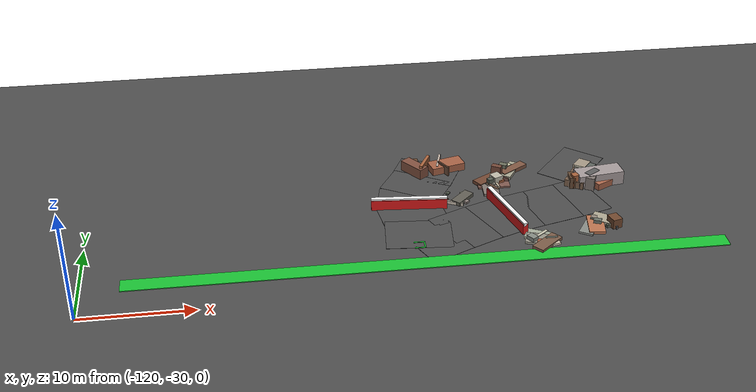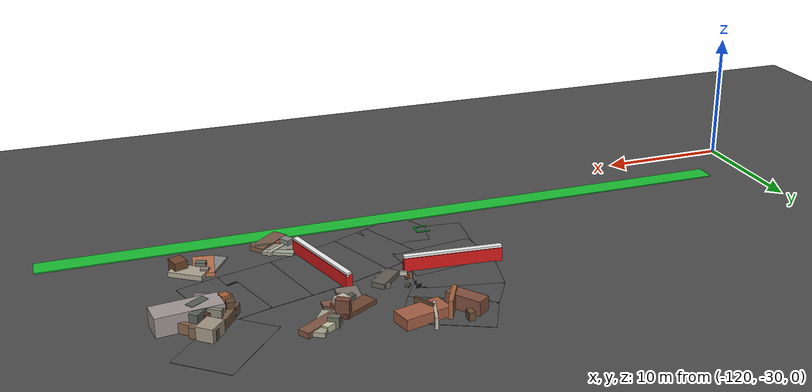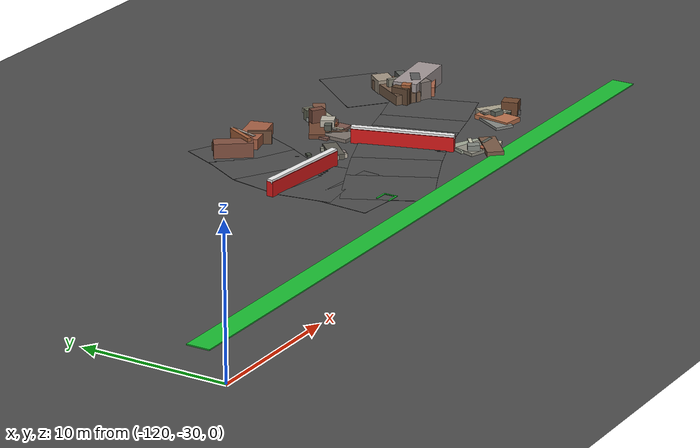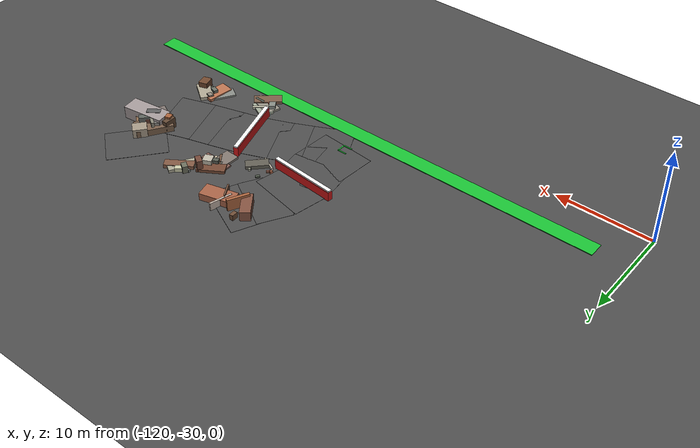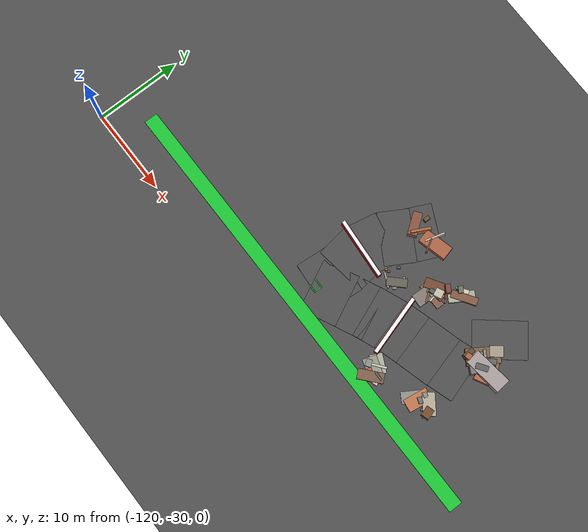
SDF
<sdf version="1.6">
 <world name="navitas_arena">
  <model name="ground_plane">
   <static>true</static>
   <link name="link">
    <collision name="collision">
     <geometry><plane><normal>0 0 1</normal><size>400 400</size></plane></geometry>
     <surface><friction><ode><mu>0.800</mu><mu2>0.800</mu2></ode></friction></surface>
    </collision>
    <visual name="visual">
     <cast_shadows>false</cast_shadows>
     <geometry><plane><normal>0 0 1</normal><size>400 400</size></plane></geometry>
     <material>
      <specular>0.04 0.04 0.04 1</specular>
      <script>
       <uri>file://media/materials/scripts/navitas_asphalt.material</uri>
       <name>Navitas/RealArenaAsphalt</name>
      </script>
     </material>
    </visual>
   </link>
  </model>
  <model name="brd_kolay_S">
   <static>true</static>
   <pose>-90.000 -25.800 0.040 0 0 0.000</pose>
   <link name="link">
    <collision name="col"><geometry><box><size>53.200 1.600 0.080</size></box></geometry></collision>
    <visual name="vis">
     <geometry><box><size>53.200 1.600 0.080</size></box></geometry>
     <material>
      <ambient>0.10 0.75 0.20 1</ambient>
      <diffuse>0.10 0.75 0.20 1</diffuse>
      <specular>0.04 0.04 0.04 1</specular>
     </material>
    </visual>
   </link>
  </model>
  <model name="road_kolay_2_0">
   <static>true</static>
   <pose>-90.490 -21.250 0.040 0 0 1.490</pose>
   <link name="link">
    <collision name="col"><geometry><box><size>4.412 6.000 0.020</size></box></geometry></collision>
    <visual name="vis">
     <geometry><box><size>4.412 6.000 0.020</size></box></geometry>
     <material>
      <specular>0.04 0.04 0.04 1</specular>
      <script>
       <uri>file://media/materials/scripts/navitas_asphalt.material</uri>
       <name>Navitas/RealArenaAsphalt</name>
      </script>
     </material>
    </visual>
   </link>
  </model>
  <model name="road_kolay_2_1">
   <static>true</static>
   <pose>-90.547 -18.111 0.040 0 0 1.713</pose>
   <link name="link">
    <collision name="col"><geometry><box><size>3.706 6.000 0.020</size></box></geometry></collision>
    <visual name="vis">
     <geometry><box><size>3.706 6.000 0.020</size></box></geometry>
     <material>
      <specular>0.04 0.04 0.04 1</specular>
      <script>
       <uri>file://media/materials/scripts/navitas_asphalt.material</uri>
       <name>Navitas/RealArenaAsphalt</name>
      </script>
     </material>
    </visual>
   </link>
  </model>
  <model name="road_kolay_2_2">
   <static>true</static>
   <pose>-90.478 -15.350 0.040 0 0 1.378</pose>
   <link name="link">
    <collision name="col"><geometry><box><size>3.696 6.000 0.020</size></box></geometry></collision>
    <visual name="vis">
     <geometry><box><size>3.696 6.000 0.020</size></box></geometry>
     <material>
      <specular>0.04 0.04 0.04 1</specular>
      <script>
       <uri>file://media/materials/scripts/navitas_asphalt.material</uri>
       <name>Navitas/RealArenaAsphalt</name>
      </script>
     </material>
    </visual>
   </link>
  </model>
  <model name="road_kolay_2_3">
   <static>true</static>
   <pose>-89.535 -12.817 0.040 0 0 1.043</pose>
   <link name="link">
    <collision name="col"><geometry><box><size>3.587 6.000 0.020</size></box></geometry></collision>
    <visual name="vis">
     <geometry><box><size>3.587 6.000 0.020</size></box></geometry>
     <material>
      <specular>0.04 0.04 0.04 1</specular>
      <script>
       <uri>file://media/materials/scripts/navitas_asphalt.material</uri>
       <name>Navitas/RealArenaAsphalt</name>
      </script>
     </material>
    </visual>
   </link>
  </model>
  <model name="road_kolay_2_4">
   <static>true</static>
   <pose>-88.283 -10.426 0.040 0 0 1.133</pose>
   <link name="link">
    <collision name="col"><geometry><box><size>3.617 6.000 0.020</size></box></geometry></collision>
    <visual name="vis">
     <geometry><box><size>3.617 6.000 0.020</size></box></geometry>
     <material>
      <specular>0.04 0.04 0.04 1</specular>
      <script>
       <uri>file://media/materials/scripts/navitas_asphalt.material</uri>
       <name>Navitas/RealArenaAsphalt</name>
      </script>
     </material>
    </visual>
   </link>
  </model>
  <model name="road_kolay_3_0">
   <static>true</static>
   <pose>-89.138 -22.266 0.040 0 0 0.457</pose>
   <link name="link">
    <collision name="col"><geometry><box><size>4.229 6.000 0.020</size></box></geometry></collision>
    <visual name="vis">
     <geometry><box><size>4.229 6.000 0.020</size></box></geometry>
     <material>
      <specular>0.04 0.04 0.04 1</specular>
      <script>
       <uri>file://media/materials/scripts/navitas_asphalt.material</uri>
       <name>Navitas/RealArenaAsphalt</name>
      </script>
     </material>
    </visual>
   </link>
  </model>
  <model name="road_kolay_3_1">
   <static>true</static>
   <pose>-86.196 -20.856 0.040 0 0 0.436</pose>
   <link name="link">
    <collision name="col"><geometry><box><size>4.096 6.000 0.020</size></box></geometry></collision>
    <visual name="vis">
     <geometry><box><size>4.096 6.000 0.020</size></box></geometry>
     <material>
      <specular>0.04 0.04 0.04 1</specular>
      <script>
       <uri>file://media/materials/scripts/navitas_asphalt.material</uri>
       <name>Navitas/RealArenaAsphalt</name>
      </script>
     </material>
    </visual>
   </link>
  </model>
  <model name="road_kolay_3_2">
   <static>true</static>
   <pose>-83.397 -19.642 0.040 0 0 0.380</pose>
   <link name="link">
    <collision name="col"><geometry><box><size>3.808 6.000 0.020</size></box></geometry></collision>
    <visual name="vis">
     <geometry><box><size>3.808 6.000 0.020</size></box></geometry>
     <material>
      <specular>0.04 0.04 0.04 1</specular>
      <script>
       <uri>file://media/materials/scripts/navitas_asphalt.material</uri>
       <name>Navitas/RealArenaAsphalt</name>
      </script>
     </material>
    </visual>
   </link>
  </model>
  <model name="road_kolay_3_3">
   <static>true</static>
   <pose>-80.676 -18.702 0.040 0 0 0.284</pose>
   <link name="link">
    <collision name="col"><geometry><box><size>3.755 6.000 0.020</size></box></geometry></collision>
    <visual name="vis">
     <geometry><box><size>3.755 6.000 0.020</size></box></geometry>
     <material>
      <specular>0.04 0.04 0.04 1</specular>
      <script>
       <uri>file://media/materials/scripts/navitas_asphalt.material</uri>
       <name>Navitas/RealArenaAsphalt</name>
      </script>
     </material>
    </visual>
   </link>
  </model>
  <model name="road_kolay_3_4">
   <static>true</static>
   <pose>-77.800 -17.886 0.040 0 0 0.270</pose>
   <link name="link">
    <collision name="col"><geometry><box><size>4.026 6.000 0.020</size></box></geometry></collision>
    <visual name="vis">
     <geometry><box><size>4.026 6.000 0.020</size></box></geometry>
     <material>
      <specular>0.04 0.04 0.04 1</specular>
      <script>
       <uri>file://media/materials/scripts/navitas_asphalt.material</uri>
       <name>Navitas/RealArenaAsphalt</name>
      </script>
     </material>
    </visual>
   </link>
  </model>
  <model name="road_kolay_3_5">
   <static>true</static>
   <pose>-74.918 -17.017 0.040 0 0 0.317</pose>
   <link name="link">
    <collision name="col"><geometry><box><size>3.795 6.000 0.020</size></box></geometry></collision>
    <visual name="vis">
     <geometry><box><size>3.795 6.000 0.020</size></box></geometry>
     <material>
      <specular>0.04 0.04 0.04 1</specular>
      <script>
       <uri>file://media/materials/scripts/navitas_asphalt.material</uri>
       <name>Navitas/RealArenaAsphalt</name>
      </script>
     </material>
    </visual>
   </link>
  </model>
  <model name="road_kolay_3_8">
   <static>true</static>
   <pose>-74.099 -11.124 0.040 0 0 2.452</pose>
   <link name="link">
    <collision name="col"><geometry><box><size>4.206 6.000 0.020</size></box></geometry></collision>
    <visual name="vis">
     <geometry><box><size>4.206 6.000 0.020</size></box></geometry>
     <material>
      <specular>0.04 0.04 0.04 1</specular>
      <script>
       <uri>file://media/materials/scripts/navitas_asphalt.material</uri>
       <name>Navitas/RealArenaAsphalt</name>
      </script>
     </material>
    </visual>
   </link>
  </model>
  <model name="bar_kolay_2">
   <static>true</static>
   <pose>-90.745 -16.722 0.500 0 0 3.061</pose>
   <link name="link">
    <collision name="col"><geometry><box><size>7.000 0.500 1.000</size></box></geometry></collision>
    <visual name="vis">
     <geometry><box><size>7.000 0.500 1.000</size></box></geometry>
     <material>
      <ambient>0.85 0.10 0.10 1</ambient>
      <diffuse>0.85 0.10 0.10 1</diffuse>
      <specular>0.04 0.04 0.04 1</specular>
     </material>
    </visual>
   </link>
  </model>
  <model name="bar_kolay_2b">
   <static>true</static>
   <pose>-90.745 -16.722 1.000 0 0 3.061</pose>
   <link name="link">
    <collision name="col"><geometry><box><size>7.000 0.400 0.300</size></box></geometry></collision>
    <visual name="vis">
     <geometry><box><size>7.000 0.400 0.300</size></box></geometry>
     <material>
      <ambient>0.95 0.95 0.95 1</ambient>
      <diffuse>0.95 0.95 0.95 1</diffuse>
      <specular>0.04 0.04 0.04 1</specular>
     </material>
    </visual>
   </link>
  </model>
  <model name="blk_kolay_2_0_5">
   <static>true</static>
   <pose>-87.723 -9.922 0.000 0 0 0</pose>
   <link name="link">
    <collision name="col_0">
     <pose>-1.365 0.841 0.314 0.000 0.000 1.570</pose>
     <geometry><box><size>0.647 0.415 0.628</size></box></geometry>
    </collision>
    <visual name="vis_0">
     <pose>-1.365 0.841 0.314 0.000 0.000 1.570</pose>
     <geometry><box><size>0.647 0.415 0.628</size></box></geometry>
     <material>
      <ambient>0.40 0.28 0.19 1</ambient>
      <diffuse>0.43 0.30 0.21 1</diffuse>
      <specular>0.05 0.05 0.045 1</specular>
     </material>
    </visual>
    <collision name="col_1">
     <pose>1.116 -0.873 0.482 0.000 0.000 2.095</pose>
     <geometry><box><size>1.595 0.155 0.963</size></box></geometry>
    </collision>
    <visual name="vis_1">
     <pose>1.116 -0.873 0.482 0.000 0.000 2.095</pose>
     <geometry><box><size>1.595 0.155 0.963</size></box></geometry>
     <material>
      <ambient>0.40 0.29 0.21 1</ambient>
      <diffuse>0.44 0.31 0.23 1</diffuse>
      <specular>0.05 0.05 0.045 1</specular>
     </material>
    </visual>
    <collision name="col_2">
     <pose>0.952 -0.942 0.346 0.000 0.000 1.160</pose>
     <geometry><box><size>0.276 0.258 0.693</size></box></geometry>
    </collision>
    <visual name="vis_2">
     <pose>0.952 -0.942 0.346 0.000 0.000 1.160</pose>
     <geometry><box><size>0.276 0.258 0.693</size></box></geometry>
     <material>
      <ambient>0.58 0.31 0.20 1</ambient>
      <diffuse>0.62 0.34 0.21 1</diffuse>
      <specular>0.05 0.05 0.045 1</specular>
     </material>
    </visual>
    <collision name="col_3">
     <pose>-1.650 -0.572 0.530 0.000 0.000 2.214</pose>
     <geometry><box><size>2.613 1.039 1.060</size></box></geometry>
    </collision>
    <visual name="vis_3">
     <pose>-1.650 -0.572 0.530 0.000 0.000 2.214</pose>
     <geometry><box><size>2.613 1.039 1.060</size></box></geometry>
     <material>
      <ambient>0.47 0.30 0.23 1</ambient>
      <diffuse>0.51 0.32 0.25 1</diffuse>
      <specular>0.05 0.05 0.045 1</specular>
     </material>
    </visual>
    <collision name="col_4">
     <pose>1.460 -0.212 0.385 0.000 0.000 0.251</pose>
     <geometry><box><size>3.333 1.555 0.769</size></box></geometry>
    </collision>
    <visual name="vis_4">
     <pose>1.460 -0.212 0.385 0.000 0.000 0.251</pose>
     <geometry><box><size>3.333 1.555 0.769</size></box></geometry>
     <material>
      <ambient>0.60 0.36 0.25 1</ambient>
      <diffuse>0.65 0.38 0.27 1</diffuse>
      <specular>0.05 0.05 0.045 1</specular>
     </material>
    </visual>
    <collision name="col_5">
     <pose>0.780 0.246 0.408 0.000 0.000 1.308</pose>
     <geometry><box><size>2.313 0.193 0.817</size></box></geometry>
    </collision>
    <visual name="vis_5">
     <pose>0.780 0.246 0.408 0.000 0.000 1.308</pose>
     <geometry><box><size>2.313 0.193 0.817</size></box></geometry>
     <material>
      <ambient>0.71 0.66 0.61 1</ambient>
      <diffuse>0.77 0.71 0.66 1</diffuse>
      <specular>0.05 0.05 0.045 1</specular>
     </material>
    </visual>
    <collision name="col_6">
     <pose>-0.681 -0.551 0.657 0.000 0.000 1.100</pose>
     <geometry><box><size>2.251 0.295 1.315</size></box></geometry>
    </collision>
    <visual name="vis_6">
     <pose>-0.681 -0.551 0.657 0.000 0.000 1.100</pose>
     <geometry><box><size>2.251 0.295 1.315</size></box></geometry>
     <material>
      <ambient>0.61 0.36 0.22 1</ambient>
      <diffuse>0.66 0.39 0.24 1</diffuse>
      <specular>0.05 0.05 0.045 1</specular>
     </material>
    </visual>
   </link>
  </model>
  <model name="bar_kolay_3">
   <static>true</static>
   <pose>-82.047 -19.102 0.500 0 0 1.867</pose>
   <link name="link">
    <collision name="col"><geometry><box><size>7.000 0.500 1.000</size></box></geometry></collision>
    <visual name="vis">
     <geometry><box><size>7.000 0.500 1.000</size></box></geometry>
     <material>
      <ambient>0.85 0.10 0.10 1</ambient>
      <diffuse>0.85 0.10 0.10 1</diffuse>
      <specular>0.04 0.04 0.04 1</specular>
     </material>
    </visual>
   </link>
  </model>
  <model name="bar_kolay_3b">
   <static>true</static>
   <pose>-82.047 -19.102 1.000 0 0 1.867</pose>
   <link name="link">
    <collision name="col"><geometry><box><size>7.000 0.400 0.300</size></box></geometry></collision>
    <visual name="vis">
     <geometry><box><size>7.000 0.400 0.300</size></box></geometry>
     <material>
      <ambient>0.95 0.95 0.95 1</ambient>
      <diffuse>0.95 0.95 0.95 1</diffuse>
      <specular>0.04 0.04 0.04 1</specular>
     </material>
    </visual>
   </link>
  </model>
  <model name="blk_kolay_3_0_4">
   <static>true</static>
   <pose>-73.222 -13.988 0.000 0 0 0</pose>
   <link name="link">
    <collision name="col_0">
     <pose>1.238 -0.852 0.325 0.000 0.000 3.630</pose>
     <geometry><box><size>2.194 1.520 0.650</size></box></geometry>
    </collision>
    <visual name="vis_0">
     <pose>1.238 -0.852 0.325 0.000 0.000 3.630</pose>
     <geometry><box><size>2.194 1.520 0.650</size></box></geometry>
     <material>
      <ambient>0.62 0.37 0.27 1</ambient>
      <diffuse>0.67 0.40 0.29 1</diffuse>
      <specular>0.05 0.05 0.045 1</specular>
     </material>
    </visual>
    <collision name="col_1">
     <pose>0.200 -0.925 0.341 0.000 0.000 3.487</pose>
     <geometry><box><size>1.309 0.253 0.682</size></box></geometry>
    </collision>
    <visual name="vis_1">
     <pose>0.200 -0.925 0.341 0.000 0.000 3.487</pose>
     <geometry><box><size>1.309 0.253 0.682</size></box></geometry>
     <material>
      <ambient>0.71 0.70 0.59 1</ambient>
      <diffuse>0.77 0.76 0.63 1</diffuse>
      <specular>0.05 0.05 0.045 1</specular>
     </material>
    </visual>
    <collision name="col_2">
     <pose>-1.493 -1.052 0.697 0.000 0.000 1.865</pose>
     <geometry><box><size>0.627 0.594 1.393</size></box></geometry>
    </collision>
    <visual name="vis_2">
     <pose>-1.493 -1.052 0.697 0.000 0.000 1.865</pose>
     <geometry><box><size>0.627 0.594 1.393</size></box></geometry>
     <material>
      <ambient>0.61 0.36 0.21 1</ambient>
      <diffuse>0.65 0.38 0.23 1</diffuse>
      <specular>0.05 0.05 0.045 1</specular>
     </material>
    </visual>
    <collision name="col_3">
     <pose>-0.193 0.140 0.637 0.000 0.000 2.565</pose>
     <geometry><box><size>2.076 0.297 1.273</size></box></geometry>
    </collision>
    <visual name="vis_3">
     <pose>-0.193 0.140 0.637 0.000 0.000 2.565</pose>
     <geometry><box><size>2.076 0.297 1.273</size></box></geometry>
     <material>
      <ambient>0.49 0.48 0.43 1</ambient>
      <diffuse>0.53 0.52 0.46 1</diffuse>
      <specular>0.05 0.05 0.045 1</specular>
     </material>
    </visual>
    <collision name="col_4">
     <pose>-0.618 0.269 0.373 0.000 0.000 4.143</pose>
     <geometry><box><size>3.690 1.844 0.746</size></box></geometry>
    </collision>
    <visual name="vis_4">
     <pose>-0.618 0.269 0.373 0.000 0.000 4.143</pose>
     <geometry><box><size>3.690 1.844 0.746</size></box></geometry>
     <material>
      <ambient>0.43 0.34 0.27 1</ambient>
      <diffuse>0.47 0.37 0.29 1</diffuse>
      <specular>0.05 0.05 0.045 1</specular>
     </material>
    </visual>
    <collision name="col_5">
     <pose>0.305 0.338 0.656 0.000 0.000 3.992</pose>
     <geometry><box><size>1.421 0.626 1.313</size></box></geometry>
    </collision>
    <visual name="vis_5">
     <pose>0.305 0.338 0.656 0.000 0.000 3.992</pose>
     <geometry><box><size>1.421 0.626 1.313</size></box></geometry>
     <material>
      <ambient>0.34 0.36 0.35 1</ambient>
      <diffuse>0.37 0.39 0.37 1</diffuse>
      <specular>0.05 0.05 0.045 1</specular>
     </material>
    </visual>
    <collision name="col_6">
     <pose>-1.744 -0.792 0.597 0.000 0.000 1.552</pose>
     <geometry><box><size>1.241 0.540 1.194</size></box></geometry>
    </collision>
    <visual name="vis_6">
     <pose>-1.744 -0.792 0.597 0.000 0.000 1.552</pose>
     <geometry><box><size>1.241 0.540 1.194</size></box></geometry>
     <material>
      <ambient>0.36 0.26 0.18 1</ambient>
      <diffuse>0.38 0.28 0.20 1</diffuse>
      <specular>0.05 0.05 0.045 1</specular>
     </material>
    </visual>
    <collision name="col_7">
     <pose>-0.124 1.635 0.497 0.000 0.000 4.025</pose>
     <geometry><box><size>1.436 1.205 0.995</size></box></geometry>
    </collision>
    <visual name="vis_7">
     <pose>-0.124 1.635 0.497 0.000 0.000 4.025</pose>
     <geometry><box><size>1.436 1.205 0.995</size></box></geometry>
     <material>
      <ambient>0.59 0.55 0.49 1</ambient>
      <diffuse>0.64 0.59 0.52 1</diffuse>
      <specular>0.05 0.05 0.045 1</specular>
     </material>
    </visual>
   </link>
  </model>
  <model name="blk_kolay_3_0_6">
   <static>true</static>
   <pose>-72.950 -13.465 0.000 0 0 0</pose>
   <link name="link">
    <collision name="col_0">
     <pose>-0.168 -0.639 0.522 0.000 0.000 2.065</pose>
     <geometry><box><size>1.391 0.607 1.044</size></box></geometry>
    </collision>
    <visual name="vis_0">
     <pose>-0.168 -0.639 0.522 0.000 0.000 2.065</pose>
     <geometry><box><size>1.391 0.607 1.044</size></box></geometry>
     <material>
      <ambient>0.40 0.24 0.20 1</ambient>
      <diffuse>0.43 0.26 0.21 1</diffuse>
      <specular>0.05 0.05 0.045 1</specular>
     </material>
    </visual>
    <collision name="col_1">
     <pose>-0.018 -1.421 0.651 0.000 0.000 4.246</pose>
     <geometry><box><size>2.185 0.849 1.303</size></box></geometry>
    </collision>
    <visual name="vis_1">
     <pose>-0.018 -1.421 0.651 0.000 0.000 4.246</pose>
     <geometry><box><size>2.185 0.849 1.303</size></box></geometry>
     <material>
      <ambient>0.45 0.42 0.39 1</ambient>
      <diffuse>0.49 0.45 0.43 1</diffuse>
      <specular>0.05 0.05 0.045 1</specular>
     </material>
    </visual>
    <collision name="col_2">
     <pose>0.434 -0.984 0.276 0.000 0.000 1.822</pose>
     <geometry><box><size>0.406 0.464 0.552</size></box></geometry>
    </collision>
    <visual name="vis_2">
     <pose>0.434 -0.984 0.276 0.000 0.000 1.822</pose>
     <geometry><box><size>0.406 0.464 0.552</size></box></geometry>
     <material>
      <ambient>0.44 0.42 0.42 1</ambient>
      <diffuse>0.48 0.45 0.45 1</diffuse>
      <specular>0.05 0.05 0.045 1</specular>
     </material>
    </visual>
    <collision name="col_3">
     <pose>-0.653 0.302 0.277 0.000 0.000 4.144</pose>
     <geometry><box><size>1.790 0.169 0.554</size></box></geometry>
    </collision>
    <visual name="vis_3">
     <pose>-0.653 0.302 0.277 0.000 0.000 4.144</pose>
     <geometry><box><size>1.790 0.169 0.554</size></box></geometry>
     <material>
      <ambient>0.70 0.68 0.58 1</ambient>
      <diffuse>0.76 0.74 0.63 1</diffuse>
      <specular>0.05 0.05 0.045 1</specular>
     </material>
    </visual>
    <collision name="col_4">
     <pose>-1.088 -0.829 0.382 0.000 0.000 1.778</pose>
     <geometry><box><size>0.403 0.333 0.764</size></box></geometry>
    </collision>
    <visual name="vis_4">
     <pose>-1.088 -0.829 0.382 0.000 0.000 1.778</pose>
     <geometry><box><size>0.403 0.333 0.764</size></box></geometry>
     <material>
      <ambient>0.45 0.31 0.28 1</ambient>
      <diffuse>0.49 0.34 0.31 1</diffuse>
      <specular>0.05 0.05 0.045 1</specular>
     </material>
    </visual>
    <collision name="col_5">
     <pose>1.037 0.072 0.362 0.000 0.000 2.417</pose>
     <geometry><box><size>2.474 0.325 0.723</size></box></geometry>
    </collision>
    <visual name="vis_5">
     <pose>1.037 0.072 0.362 0.000 0.000 2.417</pose>
     <geometry><box><size>2.474 0.325 0.723</size></box></geometry>
     <material>
      <ambient>0.49 0.37 0.27 1</ambient>
      <diffuse>0.53 0.40 0.29 1</diffuse>
      <specular>0.05 0.05 0.045 1</specular>
     </material>
    </visual>
    <collision name="col_6">
     <pose>-0.002 -1.227 0.681 0.000 0.000 3.740</pose>
     <geometry><box><size>1.401 0.643 1.362</size></box></geometry>
    </collision>
    <visual name="vis_6">
     <pose>-0.002 -1.227 0.681 0.000 0.000 3.740</pose>
     <geometry><box><size>1.401 0.643 1.362</size></box></geometry>
     <material>
      <ambient>0.33 0.34 0.33 1</ambient>
      <diffuse>0.36 0.36 0.36 1</diffuse>
      <specular>0.05 0.05 0.045 1</specular>
     </material>
    </visual>
    <collision name="col_7">
     <pose>-1.045 -0.492 0.515 0.000 0.000 3.816</pose>
     <geometry><box><size>0.757 0.809 1.030</size></box></geometry>
    </collision>
    <visual name="vis_7">
     <pose>-1.045 -0.492 0.515 0.000 0.000 3.816</pose>
     <geometry><box><size>0.757 0.809 1.030</size></box></geometry>
     <material>
      <ambient>0.51 0.50 0.48 1</ambient>
      <diffuse>0.55 0.54 0.52 1</diffuse>
      <specular>0.05 0.05 0.045 1</specular>
     </material>
    </visual>
    <collision name="col_8">
     <pose>0.695 -1.008 0.669 0.000 0.000 3.267</pose>
     <geometry><box><size>4.465 1.742 1.337</size></box></geometry>
    </collision>
    <visual name="vis_8">
     <pose>0.695 -1.008 0.669 0.000 0.000 3.267</pose>
     <geometry><box><size>4.465 1.742 1.337</size></box></geometry>
     <material>
      <ambient>0.59 0.56 0.56 1</ambient>
      <diffuse>0.64 0.60 0.60 1</diffuse>
      <specular>0.05 0.05 0.045 1</specular>
     </material>
    </visual>
   </link>
  </model>
  <model name="deb_kolay_21">
   <static>true</static>
   <pose>-80.527 -11.220 0.000 0 0 0</pose>
   <link name="link">
    <collision name="col_0">
     <pose>0.338 -0.213 0.158 0.000 0.000 1.024</pose>
     <geometry><box><size>2.927 1.085 0.315</size></box></geometry>
    </collision>
    <visual name="vis_0">
     <pose>0.338 -0.213 0.158 0.000 0.000 1.024</pose>
     <geometry><box><size>2.927 1.085 0.315</size></box></geometry>
     <material>
      <ambient>0.62 0.60 0.53 1</ambient>
      <diffuse>0.66 0.65 0.57 1</diffuse>
      <specular>0.05 0.05 0.045 1</specular>
     </material>
    </visual>
    <collision name="col_1">
     <pose>0.620 -0.066 0.194 0.000 0.000 0.582</pose>
     <geometry><box><size>2.942 0.855 0.389</size></box></geometry>
    </collision>
    <visual name="vis_1">
     <pose>0.620 -0.066 0.194 0.000 0.000 0.582</pose>
     <geometry><box><size>2.942 0.855 0.389</size></box></geometry>
     <material>
      <ambient>0.47 0.31 0.24 1</ambient>
      <diffuse>0.50 0.34 0.26 1</diffuse>
      <specular>0.05 0.05 0.045 1</specular>
     </material>
    </visual>
    <collision name="col_2">
     <pose>0.066 -0.011 0.146 0.000 0.000 -0.022</pose>
     <geometry><box><size>1.737 0.223 0.292</size></box></geometry>
    </collision>
    <visual name="vis_2">
     <pose>0.066 -0.011 0.146 0.000 0.000 -0.022</pose>
     <geometry><box><size>1.737 0.223 0.292</size></box></geometry>
     <material>
      <ambient>0.50 0.52 0.50 1</ambient>
      <diffuse>0.53 0.56 0.54 1</diffuse>
      <specular>0.05 0.05 0.045 1</specular>
     </material>
    </visual>
    <collision name="col_3">
     <pose>-0.275 0.120 0.373 0.000 0.000 1.022</pose>
     <geometry><box><size>0.534 0.751 0.747</size></box></geometry>
    </collision>
    <visual name="vis_3">
     <pose>-0.275 0.120 0.373 0.000 0.000 1.022</pose>
     <geometry><box><size>0.534 0.751 0.747</size></box></geometry>
     <material>
      <ambient>0.39 0.39 0.33 1</ambient>
      <diffuse>0.42 0.43 0.36 1</diffuse>
      <specular>0.05 0.05 0.045 1</specular>
     </material>
    </visual>
    <collision name="col_4">
     <pose>0.181 0.450 0.220 0.000 0.000 2.164</pose>
     <geometry><box><size>0.498 0.725 0.440</size></box></geometry>
    </collision>
    <visual name="vis_4">
     <pose>0.181 0.450 0.220 0.000 0.000 2.164</pose>
     <geometry><box><size>0.498 0.725 0.440</size></box></geometry>
     <material>
      <ambient>0.72 0.72 0.60 1</ambient>
      <diffuse>0.78 0.78 0.65 1</diffuse>
      <specular>0.05 0.05 0.045 1</specular>
     </material>
    </visual>
   </link>
  </model>
  <model name="deb_kolay_42">
   <static>true</static>
   <pose>-73.144 -21.823 0.000 0 0 0</pose>
   <link name="link">
    <collision name="col_0">
     <pose>0.403 -0.260 0.462 0.000 0.000 1.858</pose>
     <geometry><box><size>1.129 0.933 0.923</size></box></geometry>
    </collision>
    <visual name="vis_0">
     <pose>0.403 -0.260 0.462 0.000 0.000 1.858</pose>
     <geometry><box><size>1.129 0.933 0.923</size></box></geometry>
     <material>
      <ambient>0.41 0.26 0.17 1</ambient>
      <diffuse>0.44 0.28 0.18 1</diffuse>
      <specular>0.05 0.05 0.045 1</specular>
     </material>
    </visual>
    <collision name="col_1">
     <pose>-0.226 0.465 0.183 0.000 0.000 2.531</pose>
     <geometry><box><size>2.516 1.374 0.366</size></box></geometry>
    </collision>
    <visual name="vis_1">
     <pose>-0.226 0.465 0.183 0.000 0.000 2.531</pose>
     <geometry><box><size>2.516 1.374 0.366</size></box></geometry>
     <material>
      <ambient>0.63 0.60 0.53 1</ambient>
      <diffuse>0.68 0.65 0.57 1</diffuse>
      <specular>0.05 0.05 0.045 1</specular>
     </material>
    </visual>
    <collision name="col_2">
     <pose>0.107 0.116 0.153 0.000 0.000 1.899</pose>
     <geometry><box><size>2.331 0.146 0.307</size></box></geometry>
    </collision>
    <visual name="vis_2">
     <pose>0.107 0.116 0.153 0.000 0.000 1.899</pose>
     <geometry><box><size>2.331 0.146 0.307</size></box></geometry>
     <material>
      <ambient>0.34 0.33 0.33 1</ambient>
      <diffuse>0.36 0.35 0.36 1</diffuse>
      <specular>0.05 0.05 0.045 1</specular>
     </material>
    </visual>
    <collision name="col_3">
     <pose>-0.278 -0.471 0.139 0.000 0.000 1.900</pose>
     <geometry><box><size>0.284 0.231 0.279</size></box></geometry>
    </collision>
    <visual name="vis_3">
     <pose>-0.278 -0.471 0.139 0.000 0.000 1.900</pose>
     <geometry><box><size>0.284 0.231 0.279</size></box></geometry>
     <material>
      <ambient>0.32 0.34 0.29 1</ambient>
      <diffuse>0.34 0.37 0.31 1</diffuse>
      <specular>0.05 0.05 0.045 1</specular>
     </material>
    </visual>
   </link>
  </model>
  <model name="deb_kolay_94">
   <static>true</static>
   <pose>-80.054 -23.530 0.000 0 0 0</pose>
   <link name="link">
    <collision name="col_0">
     <pose>-0.584 -0.136 0.296 0.000 0.000 2.173</pose>
     <geometry><box><size>0.800 0.652 0.592</size></box></geometry>
    </collision>
    <visual name="vis_0">
     <pose>-0.584 -0.136 0.296 0.000 0.000 2.173</pose>
     <geometry><box><size>0.800 0.652 0.592</size></box></geometry>
     <material>
      <ambient>0.48 0.50 0.48 1</ambient>
      <diffuse>0.52 0.54 0.51 1</diffuse>
      <specular>0.05 0.05 0.045 1</specular>
     </material>
    </visual>
    <collision name="col_1">
     <pose>0.124 0.403 0.144 0.000 0.000 0.665</pose>
     <geometry><box><size>2.207 0.246 0.288</size></box></geometry>
    </collision>
    <visual name="vis_1">
     <pose>0.124 0.403 0.144 0.000 0.000 0.665</pose>
     <geometry><box><size>2.207 0.246 0.288</size></box></geometry>
     <material>
      <ambient>0.73 0.72 0.64 1</ambient>
      <diffuse>0.78 0.77 0.69 1</diffuse>
      <specular>0.05 0.05 0.045 1</specular>
     </material>
    </visual>
    <collision name="col_2">
     <pose>0.073 0.570 0.105 0.000 0.000 2.687</pose>
     <geometry><box><size>2.223 1.447 0.210</size></box></geometry>
    </collision>
    <visual name="vis_2">
     <pose>0.073 0.570 0.105 0.000 0.000 2.687</pose>
     <geometry><box><size>2.223 1.447 0.210</size></box></geometry>
     <material>
      <ambient>0.59 0.62 0.55 1</ambient>
      <diffuse>0.64 0.67 0.60 1</diffuse>
      <specular>0.05 0.05 0.045 1</specular>
     </material>
    </visual>
    <collision name="col_3">
     <pose>0.609 -0.809 0.168 0.000 0.000 0.715</pose>
     <geometry><box><size>2.862 1.136 0.337</size></box></geometry>
    </collision>
    <visual name="vis_3">
     <pose>0.609 -0.809 0.168 0.000 0.000 0.715</pose>
     <geometry><box><size>2.862 1.136 0.337</size></box></geometry>
     <material>
      <ambient>0.44 0.33 0.26 1</ambient>
      <diffuse>0.48 0.36 0.28 1</diffuse>
      <specular>0.05 0.05 0.045 1</specular>
     </material>
    </visual>
    <collision name="col_4">
     <pose>0.082 -0.061 0.109 0.000 0.000 2.825</pose>
     <geometry><box><size>2.420 1.581 0.217</size></box></geometry>
    </collision>
    <visual name="vis_4">
     <pose>0.082 -0.061 0.109 0.000 0.000 2.825</pose>
     <geometry><box><size>2.420 1.581 0.217</size></box></geometry>
     <material>
      <ambient>0.54 0.53 0.48 1</ambient>
      <diffuse>0.58 0.57 0.52 1</diffuse>
      <specular>0.05 0.05 0.045 1</specular>
     </material>
    </visual>
    <collision name="col_5">
     <pose>-0.001 -0.494 0.146 0.000 0.000 1.198</pose>
     <geometry><box><size>0.506 0.388 0.291</size></box></geometry>
    </collision>
    <visual name="vis_5">
     <pose>-0.001 -0.494 0.146 0.000 0.000 1.198</pose>
     <geometry><box><size>0.506 0.388 0.291</size></box></geometry>
     <material>
      <ambient>0.61 0.34 0.24 1</ambient>
      <diffuse>0.66 0.37 0.26 1</diffuse>
      <specular>0.05 0.05 0.045 1</specular>
     </material>
    </visual>
   </link>
  </model>
  <model name="deb_kolay_108">
   <static>true</static>
   <pose>-79.304 -23.542 0.000 0 0 0</pose>
   <link name="link">
    <collision name="col_0">
     <pose>-0.252 0.543 0.060 0.000 0.000 1.742</pose>
     <geometry><box><size>0.325 0.257 0.120</size></box></geometry>
    </collision>
    <visual name="vis_0">
     <pose>-0.252 0.543 0.060 0.000 0.000 1.742</pose>
     <geometry><box><size>0.325 0.257 0.120</size></box></geometry>
     <material>
      <ambient>0.43 0.44 0.37 1</ambient>
      <diffuse>0.46 0.47 0.40 1</diffuse>
      <specular>0.05 0.05 0.045 1</specular>
     </material>
    </visual>
    <collision name="col_1">
     <pose>0.086 -0.536 0.105 0.000 0.000 3.418</pose>
     <geometry><box><size>1.652 1.345 0.209</size></box></geometry>
    </collision>
    <visual name="vis_1">
     <pose>0.086 -0.536 0.105 0.000 0.000 3.418</pose>
     <geometry><box><size>1.652 1.345 0.209</size></box></geometry>
     <material>
      <ambient>0.74 0.69 0.62 1</ambient>
      <diffuse>0.80 0.75 0.67 1</diffuse>
      <specular>0.05 0.05 0.045 1</specular>
     </material>
    </visual>
    <collision name="col_2">
     <pose>-0.361 0.199 0.108 0.000 0.000 3.517</pose>
     <geometry><box><size>0.371 0.367 0.216</size></box></geometry>
    </collision>
    <visual name="vis_2">
     <pose>-0.361 0.199 0.108 0.000 0.000 3.517</pose>
     <geometry><box><size>0.371 0.367 0.216</size></box></geometry>
     <material>
      <ambient>0.51 0.53 0.45 1</ambient>
      <diffuse>0.55 0.58 0.48 1</diffuse>
      <specular>0.05 0.05 0.045 1</specular>
     </material>
    </visual>
    <collision name="col_3">
     <pose>0.387 -0.164 0.170 0.000 0.000 3.113</pose>
     <geometry><box><size>1.085 0.240 0.340</size></box></geometry>
    </collision>
    <visual name="vis_3">
     <pose>0.387 -0.164 0.170 0.000 0.000 3.113</pose>
     <geometry><box><size>1.085 0.240 0.340</size></box></geometry>
     <material>
      <ambient>0.33 0.35 0.33 1</ambient>
      <diffuse>0.35 0.38 0.35 1</diffuse>
      <specular>0.05 0.05 0.045 1</specular>
     </material>
    </visual>
   </link>
  </model>
  <model name="deb_kolay_127">
   <static>true</static>
   <pose>-82.436 -13.687 0.000 0 0 0</pose>
   <link name="link">
    <collision name="col_0">
     <pose>0.538 0.496 0.405 0.000 0.000 2.004</pose>
     <geometry><box><size>0.922 0.919 0.809</size></box></geometry>
    </collision>
    <visual name="vis_0">
     <pose>0.538 0.496 0.405 0.000 0.000 2.004</pose>
     <geometry><box><size>0.922 0.919 0.809</size></box></geometry>
     <material>
      <ambient>0.69 0.67 0.61 1</ambient>
      <diffuse>0.74 0.72 0.66 1</diffuse>
      <specular>0.05 0.05 0.045 1</specular>
     </material>
    </visual>
    <collision name="col_1">
     <pose>0.184 -0.150 0.084 0.000 0.000 3.125</pose>
     <geometry><box><size>3.061 0.931 0.167</size></box></geometry>
    </collision>
    <visual name="vis_1">
     <pose>0.184 -0.150 0.084 0.000 0.000 3.125</pose>
     <geometry><box><size>3.061 0.931 0.167</size></box></geometry>
     <material>
      <ambient>0.46 0.33 0.29 1</ambient>
      <diffuse>0.50 0.35 0.31 1</diffuse>
      <specular>0.05 0.05 0.045 1</specular>
     </material>
    </visual>
    <collision name="col_2">
     <pose>-0.411 -0.110 0.128 0.000 0.000 1.904</pose>
     <geometry><box><size>0.511 0.330 0.255</size></box></geometry>
    </collision>
    <visual name="vis_2">
     <pose>-0.411 -0.110 0.128 0.000 0.000 1.904</pose>
     <geometry><box><size>0.511 0.330 0.255</size></box></geometry>
     <material>
      <ambient>0.38 0.38 0.34 1</ambient>
      <diffuse>0.41 0.41 0.37 1</diffuse>
      <specular>0.05 0.05 0.045 1</specular>
     </material>
    </visual>
    <collision name="col_3">
     <pose>-0.154 -0.327 0.135 0.000 0.000 2.200</pose>
     <geometry><box><size>1.995 0.227 0.269</size></box></geometry>
    </collision>
    <visual name="vis_3">
     <pose>-0.154 -0.327 0.135 0.000 0.000 2.200</pose>
     <geometry><box><size>1.995 0.227 0.269</size></box></geometry>
     <material>
      <ambient>0.42 0.31 0.23 1</ambient>
      <diffuse>0.45 0.33 0.25 1</diffuse>
      <specular>0.05 0.05 0.045 1</specular>
     </material>
    </visual>
    <collision name="col_4">
     <pose>-0.262 -0.683 0.120 0.000 0.000 1.526</pose>
     <geometry><box><size>2.470 1.506 0.241</size></box></geometry>
    </collision>
    <visual name="vis_4">
     <pose>-0.262 -0.683 0.120 0.000 0.000 1.526</pose>
     <geometry><box><size>2.470 1.506 0.241</size></box></geometry>
     <material>
      <ambient>0.47 0.43 0.40 1</ambient>
      <diffuse>0.50 0.46 0.43 1</diffuse>
      <specular>0.05 0.05 0.045 1</specular>
     </material>
    </visual>
    <collision name="col_5">
     <pose>0.415 0.125 0.149 0.000 0.000 1.768</pose>
     <geometry><box><size>1.701 0.206 0.298</size></box></geometry>
    </collision>
    <visual name="vis_5">
     <pose>0.415 0.125 0.149 0.000 0.000 1.768</pose>
     <geometry><box><size>1.701 0.206 0.298</size></box></geometry>
     <material>
      <ambient>0.74 0.69 0.60 1</ambient>
      <diffuse>0.80 0.75 0.65 1</diffuse>
      <specular>0.05 0.05 0.045 1</specular>
     </material>
    </visual>
   </link>
  </model>
  <model name="deb_kolay_133">
   <static>true</static>
   <pose>-81.852 -12.782 0.000 0 0 0</pose>
   <link name="link">
    <collision name="col_0">
     <pose>0.543 0.103 0.178 0.000 0.000 -0.758</pose>
     <geometry><box><size>1.659 0.138 0.357</size></box></geometry>
    </collision>
    <visual name="vis_0">
     <pose>0.543 0.103 0.178 0.000 0.000 -0.758</pose>
     <geometry><box><size>1.659 0.138 0.357</size></box></geometry>
     <material>
      <ambient>0.46 0.33 0.28 1</ambient>
      <diffuse>0.50 0.35 0.31 1</diffuse>
      <specular>0.05 0.05 0.045 1</specular>
     </material>
    </visual>
    <collision name="col_1">
     <pose>0.345 -0.440 0.188 0.000 0.000 0.223</pose>
     <geometry><box><size>0.527 0.813 0.376</size></box></geometry>
    </collision>
    <visual name="vis_1">
     <pose>0.345 -0.440 0.188 0.000 0.000 0.223</pose>
     <geometry><box><size>0.527 0.813 0.376</size></box></geometry>
     <material>
      <ambient>0.58 0.32 0.21 1</ambient>
      <diffuse>0.62 0.35 0.22 1</diffuse>
      <specular>0.05 0.05 0.045 1</specular>
     </material>
    </visual>
    <collision name="col_2">
     <pose>-0.465 -0.714 0.339 0.000 0.000 0.407</pose>
     <geometry><box><size>1.043 0.467 0.679</size></box></geometry>
    </collision>
    <visual name="vis_2">
     <pose>-0.465 -0.714 0.339 0.000 0.000 0.407</pose>
     <geometry><box><size>1.043 0.467 0.679</size></box></geometry>
     <material>
      <ambient>0.32 0.34 0.29 1</ambient>
      <diffuse>0.34 0.36 0.32 1</diffuse>
      <specular>0.05 0.05 0.045 1</specular>
     </material>
    </visual>
    <collision name="col_3">
     <pose>-0.255 -0.615 0.160 0.000 0.000 1.332</pose>
     <geometry><box><size>1.359 0.202 0.319</size></box></geometry>
    </collision>
    <visual name="vis_3">
     <pose>-0.255 -0.615 0.160 0.000 0.000 1.332</pose>
     <geometry><box><size>1.359 0.202 0.319</size></box></geometry>
     <material>
      <ambient>0.51 0.50 0.46 1</ambient>
      <diffuse>0.55 0.54 0.50 1</diffuse>
      <specular>0.05 0.05 0.045 1</specular>
     </material>
    </visual>
    <collision name="col_4">
     <pose>0.027 -0.441 0.091 0.000 0.000 0.946</pose>
     <geometry><box><size>0.248 0.419 0.182</size></box></geometry>
    </collision>
    <visual name="vis_4">
     <pose>0.027 -0.441 0.091 0.000 0.000 0.946</pose>
     <geometry><box><size>0.248 0.419 0.182</size></box></geometry>
     <material>
      <ambient>0.64 0.64 0.55 1</ambient>
      <diffuse>0.69 0.69 0.59 1</diffuse>
      <specular>0.05 0.05 0.045 1</specular>
     </material>
    </visual>
    <collision name="col_5">
     <pose>0.176 0.607 0.619 0.000 0.000 1.017</pose>
     <geometry><box><size>0.552 0.946 1.239</size></box></geometry>
    </collision>
    <visual name="vis_5">
     <pose>0.176 0.607 0.619 0.000 0.000 1.017</pose>
     <geometry><box><size>0.552 0.946 1.239</size></box></geometry>
     <material>
      <ambient>0.42 0.26 0.21 1</ambient>
      <diffuse>0.45 0.28 0.22 1</diffuse>
      <specular>0.05 0.05 0.045 1</specular>
     </material>
    </visual>
    <collision name="col_6">
     <pose>-0.802 -0.025 0.164 0.000 0.000 0.552</pose>
     <geometry><box><size>2.767 1.094 0.328</size></box></geometry>
    </collision>
    <visual name="vis_6">
     <pose>-0.802 -0.025 0.164 0.000 0.000 0.552</pose>
     <geometry><box><size>2.767 1.094 0.328</size></box></geometry>
     <material>
      <ambient>0.42 0.26 0.19 1</ambient>
      <diffuse>0.45 0.28 0.20 1</diffuse>
      <specular>0.05 0.05 0.045 1</specular>
     </material>
    </visual>
   </link>
  </model>
  <model name="deb_kolay_170">
   <static>true</static>
   <pose>-86.287 -15.853 0.000 0 0 0</pose>
   <link name="link">
    <collision name="col_0">
     <pose>-1.136 -0.085 0.138 0.000 0.000 1.195</pose>
     <geometry><box><size>0.279 0.200 0.277</size></box></geometry>
    </collision>
    <visual name="vis_0">
     <pose>-1.136 -0.085 0.138 0.000 0.000 1.195</pose>
     <geometry><box><size>0.279 0.200 0.277</size></box></geometry>
     <material>
      <ambient>0.63 0.37 0.26 1</ambient>
      <diffuse>0.68 0.40 0.28 1</diffuse>
      <specular>0.05 0.05 0.045 1</specular>
     </material>
    </visual>
    <collision name="col_1">
     <pose>0.656 -0.069 0.187 0.000 0.000 0.800</pose>
     <geometry><box><size>2.252 0.958 0.374</size></box></geometry>
    </collision>
    <visual name="vis_1">
     <pose>0.656 -0.069 0.187 0.000 0.000 0.800</pose>
     <geometry><box><size>2.252 0.958 0.374</size></box></geometry>
     <material>
      <ambient>0.35 0.35 0.30 1</ambient>
      <diffuse>0.38 0.37 0.33 1</diffuse>
      <specular>0.05 0.05 0.045 1</specular>
     </material>
    </visual>
    <collision name="col_2">
     <pose>-0.204 -0.776 0.153 0.000 0.000 2.693</pose>
     <geometry><box><size>1.738 0.173 0.307</size></box></geometry>
    </collision>
    <visual name="vis_2">
     <pose>-0.204 -0.776 0.153 0.000 0.000 2.693</pose>
     <geometry><box><size>1.738 0.173 0.307</size></box></geometry>
     <material>
      <ambient>0.71 0.67 0.62 1</ambient>
      <diffuse>0.77 0.73 0.67 1</diffuse>
      <specular>0.05 0.05 0.045 1</specular>
     </material>
    </visual>
    <collision name="col_3">
     <pose>-0.836 0.015 0.089 0.000 0.000 2.295</pose>
     <geometry><box><size>0.218 0.350 0.177</size></box></geometry>
    </collision>
    <visual name="vis_3">
     <pose>-0.836 0.015 0.089 0.000 0.000 2.295</pose>
     <geometry><box><size>0.218 0.350 0.177</size></box></geometry>
     <material>
      <ambient>0.45 0.28 0.22 1</ambient>
      <diffuse>0.48 0.30 0.24 1</diffuse>
      <specular>0.05 0.05 0.045 1</specular>
     </material>
    </visual>
    <collision name="col_4">
     <pose>0.950 -0.608 0.106 0.000 0.000 2.384</pose>
     <geometry><box><size>0.372 0.462 0.211</size></box></geometry>
    </collision>
    <visual name="vis_4">
     <pose>0.950 -0.608 0.106 0.000 0.000 2.384</pose>
     <geometry><box><size>0.372 0.462 0.211</size></box></geometry>
     <material>
      <ambient>0.51 0.46 0.44 1</ambient>
      <diffuse>0.55 0.50 0.48 1</diffuse>
      <specular>0.05 0.05 0.045 1</specular>
     </material>
    </visual>
    <collision name="col_5">
     <pose>0.769 0.828 0.129 0.000 0.000 2.187</pose>
     <geometry><box><size>0.322 0.233 0.257</size></box></geometry>
    </collision>
    <visual name="vis_5">
     <pose>0.769 0.828 0.129 0.000 0.000 2.187</pose>
     <geometry><box><size>0.322 0.233 0.257</size></box></geometry>
     <material>
      <ambient>0.54 0.53 0.48 1</ambient>
      <diffuse>0.58 0.58 0.52 1</diffuse>
      <specular>0.05 0.05 0.045 1</specular>
     </material>
    </visual>
    <collision name="col_6">
     <pose>-0.508 1.137 0.075 0.000 0.000 2.496</pose>
     <geometry><box><size>0.295 0.423 0.150</size></box></geometry>
    </collision>
    <visual name="vis_6">
     <pose>-0.508 1.137 0.075 0.000 0.000 2.496</pose>
     <geometry><box><size>0.295 0.423 0.150</size></box></geometry>
     <material>
      <ambient>0.27 0.30 0.25 1</ambient>
      <diffuse>0.29 0.32 0.27 1</diffuse>
      <specular>0.05 0.05 0.045 1</specular>
     </material>
    </visual>
   </link>
  </model>
  <model name="deb_kolay_197">
   <static>true</static>
   <pose>-74.845 -21.588 0.000 0 0 0</pose>
   <link name="link">
    <collision name="col_0">
     <pose>0.592 -0.268 0.314 0.000 0.000 -0.353</pose>
     <geometry><box><size>0.715 0.469 0.628</size></box></geometry>
    </collision>
    <visual name="vis_0">
     <pose>0.592 -0.268 0.314 0.000 0.000 -0.353</pose>
     <geometry><box><size>0.715 0.469 0.628</size></box></geometry>
     <material>
      <ambient>0.38 0.40 0.36 1</ambient>
      <diffuse>0.41 0.43 0.39 1</diffuse>
      <specular>0.05 0.05 0.045 1</specular>
     </material>
    </visual>
    <collision name="col_1">
     <pose>0.469 0.524 0.235 0.000 0.000 1.247</pose>
     <geometry><box><size>0.473 0.560 0.471</size></box></geometry>
    </collision>
    <visual name="vis_1">
     <pose>0.469 0.524 0.235 0.000 0.000 1.247</pose>
     <geometry><box><size>0.473 0.560 0.471</size></box></geometry>
     <material>
      <ambient>0.52 0.49 0.44 1</ambient>
      <diffuse>0.56 0.52 0.47 1</diffuse>
      <specular>0.05 0.05 0.045 1</specular>
     </material>
    </visual>
    <collision name="col_2">
     <pose>0.672 0.054 0.160 0.000 0.000 1.549</pose>
     <geometry><box><size>0.283 0.385 0.319</size></box></geometry>
    </collision>
    <visual name="vis_2">
     <pose>0.672 0.054 0.160 0.000 0.000 1.549</pose>
     <geometry><box><size>0.283 0.385 0.319</size></box></geometry>
     <material>
      <ambient>0.38 0.35 0.33 1</ambient>
      <diffuse>0.41 0.37 0.35 1</diffuse>
      <specular>0.05 0.05 0.045 1</specular>
     </material>
    </visual>
    <collision name="col_3">
     <pose>0.412 -0.414 0.155 0.000 0.000 1.432</pose>
     <geometry><box><size>2.722 1.471 0.310</size></box></geometry>
    </collision>
    <visual name="vis_3">
     <pose>0.412 -0.414 0.155 0.000 0.000 1.432</pose>
     <geometry><box><size>2.722 1.471 0.310</size></box></geometry>
     <material>
      <ambient>0.68 0.41 0.29 1</ambient>
      <diffuse>0.73 0.45 0.31 1</diffuse>
      <specular>0.05 0.05 0.045 1</specular>
     </material>
    </visual>
    <collision name="col_4">
     <pose>-0.206 -0.632 0.092 0.000 0.000 1.023</pose>
     <geometry><box><size>2.426 1.293 0.184</size></box></geometry>
    </collision>
    <visual name="vis_4">
     <pose>-0.206 -0.632 0.092 0.000 0.000 1.023</pose>
     <geometry><box><size>2.426 1.293 0.184</size></box></geometry>
     <material>
      <ambient>0.49 0.50 0.48 1</ambient>
      <diffuse>0.53 0.54 0.52 1</diffuse>
      <specular>0.05 0.05 0.045 1</specular>
     </material>
    </visual>
    <collision name="col_5">
     <pose>0.654 0.050 0.151 0.000 0.000 0.982</pose>
     <geometry><box><size>0.327 0.254 0.302</size></box></geometry>
    </collision>
    <visual name="vis_5">
     <pose>0.654 0.050 0.151 0.000 0.000 0.982</pose>
     <geometry><box><size>0.327 0.254 0.302</size></box></geometry>
     <material>
      <ambient>0.37 0.34 0.35 1</ambient>
      <diffuse>0.40 0.36 0.38 1</diffuse>
      <specular>0.05 0.05 0.045 1</specular>
     </material>
    </visual>
   </link>
  </model>
  <model name="kb_kolay_N">
   <static>true</static>
   <pose>-90.632 -22.560 0.070 0 0 0.000</pose>
   <link name="link">
    <collision name="col"><geometry><box><size>1.000 0.120 0.040</size></box></geometry></collision>
    <visual name="vis">
     <geometry><box><size>1.000 0.120 0.040</size></box></geometry>
     <material>
      <ambient>0.10 0.75 0.20 1</ambient>
      <diffuse>0.10 0.75 0.20 1</diffuse>
      <specular>0.04 0.04 0.04 1</specular>
     </material>
    </visual>
   </link>
  </model>
  <model name="kb_kolay_S">
   <static>true</static>
   <pose>-90.632 -23.440 0.070 0 0 0.000</pose>
   <link name="link">
    <collision name="col"><geometry><box><size>1.000 0.120 0.040</size></box></geometry></collision>
    <visual name="vis">
     <geometry><box><size>1.000 0.120 0.040</size></box></geometry>
     <material>
      <ambient>0.10 0.75 0.20 1</ambient>
      <diffuse>0.10 0.75 0.20 1</diffuse>
      <specular>0.04 0.04 0.04 1</specular>
     </material>
    </visual>
   </link>
  </model>
  <model name="kb_kolay_E">
   <static>true</static>
   <pose>-90.192 -23.000 0.070 0 0 0.000</pose>
   <link name="link">
    <collision name="col"><geometry><box><size>0.120 0.760 0.040</size></box></geometry></collision>
    <visual name="vis">
     <geometry><box><size>0.120 0.760 0.040</size></box></geometry>
     <material>
      <ambient>0.10 0.75 0.20 1</ambient>
      <diffuse>0.10 0.75 0.20 1</diffuse>
      <specular>0.04 0.04 0.04 1</specular>
     </material>
    </visual>
   </link>
  </model>
 </world>
</sdf>
